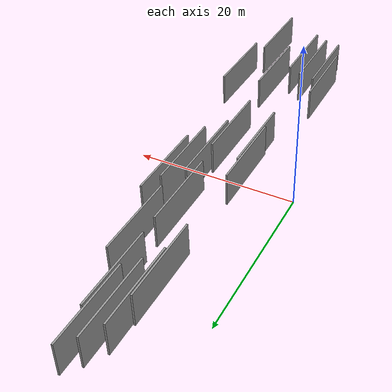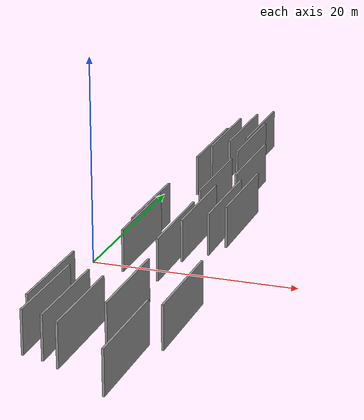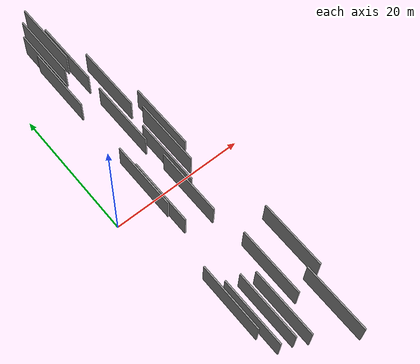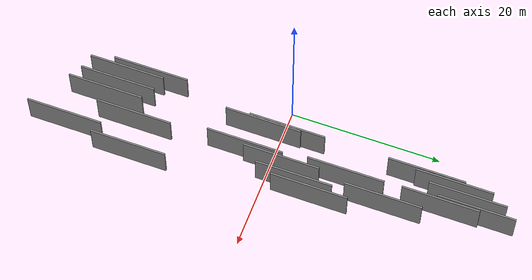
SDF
<sdf version="1.6">
 <world name="default">
  <scene>
   <sky><clouds><speed>12</speed></clouds></sky>
   <ambient>0.4 0.4 0.4 1</ambient>
   <background>0.7 0.7 0.7 1</background>
   <shadows>1</shadows>
  </scene>
  <gravity>0 0 -9.8066</gravity>
  <magnetic_field>6e-06 2.3e-05 -4.2e-05</magnetic_field>
  <physics default="0" name="default_physics" type="ode">
   <ode>
    <solver>
     <type>quick</type>
     <iters>10</iters>
     <sor>1.0</sor>
     <use_dynamic_moi_rescaling>0</use_dynamic_moi_rescaling>
    </solver>
    <constraints>
     <cfm>0</cfm>
     <erp>0.2</erp>
     <contact_max_correcting_vel>100</contact_max_correcting_vel>
     <contact_surface_layer>0.001</contact_surface_layer>
    </constraints>
   </ode>
   <max_step_size>0.004</max_step_size>
   <real_time_factor>1</real_time_factor>
   <real_time_update_rate>250</real_time_update_rate>
  </physics>
  <light name="sun" type="directional">
   <pose>0 0 10 0 0 0</pose>
   <diffuse>0.8 0.8 0.8 1</diffuse>
   <specular>0.2 0.2 0.2 1</specular>
   <attenuation>
    <range>1000</range>
    <constant>0.9</constant>
    <linear>0.01</linear>
    <quadratic>0.001</quadratic>
   </attenuation>
   <direction>-0.5 0.1 -0.9</direction>
  </light>
  <model name="grey_wall_1">
   <static>1</static>
   <pose>10.1915 -17.6369 2.5 0.000000 0.000000 1.570796</pose>
   <link name="link">
    <pose>0 0 2.00 0 0 0</pose>
    <collision name="collision"><geometry><box><size>10.00 0.2 4.00</size></box></geometry></collision>
    <visual name="visual">
     <cast_shadows>0</cast_shadows>
     <geometry><box><size>10.00 0.2 4.00</size></box></geometry>
     <material>
      <script>
       <uri>model://grey_wall/materials/scripts</uri>
       <uri>model://grey_wall/materials/textures</uri>
       <name>vrc/grey_wall</name>
      </script>
     </material>
    </visual>
   </link>
  </model>
  <model name="grey_wall_2">
   <static>1</static>
   <pose>13.1539 -25.8379 2.5 0.000000 0.000000 1.570796</pose>
   <link name="link">
    <pose>0 0 2.00 0 0 0</pose>
    <collision name="collision"><geometry><box><size>10.00 0.2 4.00</size></box></geometry></collision>
    <visual name="visual">
     <cast_shadows>0</cast_shadows>
     <geometry><box><size>10.00 0.2 4.00</size></box></geometry>
     <material>
      <script>
       <uri>model://grey_wall/materials/scripts</uri>
       <uri>model://grey_wall/materials/textures</uri>
       <name>vrc/grey_wall</name>
      </script>
     </material>
    </visual>
   </link>
  </model>
  <model name="grey_wall_3">
   <static>1</static>
   <pose>5.4535 19.5235 2.5 0.000000 0.000000 1.570796</pose>
   <link name="link">
    <pose>0 0 2.00 0 0 0</pose>
    <collision name="collision"><geometry><box><size>10.00 0.2 4.00</size></box></geometry></collision>
    <visual name="visual">
     <cast_shadows>0</cast_shadows>
     <geometry><box><size>10.00 0.2 4.00</size></box></geometry>
     <material>
      <script>
       <uri>model://grey_wall/materials/scripts</uri>
       <uri>model://grey_wall/materials/textures</uri>
       <name>vrc/grey_wall</name>
      </script>
     </material>
    </visual>
   </link>
  </model>
  <model name="grey_wall_4">
   <static>1</static>
   <pose>14.6187 -16.5782 2.5 0.000000 0.000000 1.570796</pose>
   <link name="link">
    <pose>0 0 2.00 0 0 0</pose>
    <collision name="collision"><geometry><box><size>10.00 0.2 4.00</size></box></geometry></collision>
    <visual name="visual">
     <cast_shadows>0</cast_shadows>
     <geometry><box><size>10.00 0.2 4.00</size></box></geometry>
     <material>
      <script>
       <uri>model://grey_wall/materials/scripts</uri>
       <uri>model://grey_wall/materials/textures</uri>
       <name>vrc/grey_wall</name>
      </script>
     </material>
    </visual>
   </link>
  </model>
  <model name="grey_wall_5">
   <static>1</static>
   <pose>9.8254 1.9844 2.5 0.000000 0.000000 1.570796</pose>
   <link name="link">
    <pose>0 0 2.00 0 0 0</pose>
    <collision name="collision"><geometry><box><size>10.00 0.2 4.00</size></box></geometry></collision>
    <visual name="visual">
     <cast_shadows>0</cast_shadows>
     <geometry><box><size>10.00 0.2 4.00</size></box></geometry>
     <material>
      <script>
       <uri>model://grey_wall/materials/scripts</uri>
       <uri>model://grey_wall/materials/textures</uri>
       <name>vrc/grey_wall</name>
      </script>
     </material>
    </visual>
   </link>
  </model>
  <model name="grey_wall_6">
   <static>1</static>
   <pose>5.7370 23.1945 2.5 0.000000 0.000000 1.570796</pose>
   <link name="link">
    <pose>0 0 2.00 0 0 0</pose>
    <collision name="collision"><geometry><box><size>10.00 0.2 4.00</size></box></geometry></collision>
    <visual name="visual">
     <cast_shadows>0</cast_shadows>
     <geometry><box><size>10.00 0.2 4.00</size></box></geometry>
     <material>
      <script>
       <uri>model://grey_wall/materials/scripts</uri>
       <uri>model://grey_wall/materials/textures</uri>
       <name>vrc/grey_wall</name>
      </script>
     </material>
    </visual>
   </link>
  </model>
  <model name="grey_wall_7">
   <static>1</static>
   <pose>6.9588 25.2587 2.5 0.000000 0.000000 1.570796</pose>
   <link name="link">
    <pose>0 0 2.00 0 0 0</pose>
    <collision name="collision"><geometry><box><size>10.00 0.2 4.00</size></box></geometry></collision>
    <visual name="visual">
     <cast_shadows>0</cast_shadows>
     <geometry><box><size>10.00 0.2 4.00</size></box></geometry>
     <material>
      <script>
       <uri>model://grey_wall/materials/scripts</uri>
       <uri>model://grey_wall/materials/textures</uri>
       <name>vrc/grey_wall</name>
      </script>
     </material>
    </visual>
   </link>
  </model>
  <model name="grey_wall_8">
   <static>1</static>
   <pose>12.5644 6.6030 2.5 0.000000 0.000000 1.570796</pose>
   <link name="link">
    <pose>0 0 2.00 0 0 0</pose>
    <collision name="collision"><geometry><box><size>10.00 0.2 4.00</size></box></geometry></collision>
    <visual name="visual">
     <cast_shadows>0</cast_shadows>
     <geometry><box><size>10.00 0.2 4.00</size></box></geometry>
     <material>
      <script>
       <uri>model://grey_wall/materials/scripts</uri>
       <uri>model://grey_wall/materials/textures</uri>
       <name>vrc/grey_wall</name>
      </script>
     </material>
    </visual>
   </link>
  </model>
  <model name="grey_wall_9">
   <static>1</static>
   <pose>10.6822 15.5654 2.5 0.000000 0.000000 1.570796</pose>
   <link name="link">
    <pose>0 0 2.00 0 0 0</pose>
    <collision name="collision"><geometry><box><size>10.00 0.2 4.00</size></box></geometry></collision>
    <visual name="visual">
     <cast_shadows>0</cast_shadows>
     <geometry><box><size>10.00 0.2 4.00</size></box></geometry>
     <material>
      <script>
       <uri>model://grey_wall/materials/scripts</uri>
       <uri>model://grey_wall/materials/textures</uri>
       <name>vrc/grey_wall</name>
      </script>
     </material>
    </visual>
   </link>
  </model>
  <model name="grey_wall_10">
   <static>1</static>
   <pose>6.2647 -21.4717 2.5 0.000000 0.000000 1.570796</pose>
   <link name="link">
    <pose>0 0 2.00 0 0 0</pose>
    <collision name="collision"><geometry><box><size>10.00 0.2 4.00</size></box></geometry></collision>
    <visual name="visual">
     <cast_shadows>0</cast_shadows>
     <geometry><box><size>10.00 0.2 4.00</size></box></geometry>
     <material>
      <script>
       <uri>model://grey_wall/materials/scripts</uri>
       <uri>model://grey_wall/materials/textures</uri>
       <name>vrc/grey_wall</name>
      </script>
     </material>
    </visual>
   </link>
  </model>
  <model name="grey_wall_11">
   <static>1</static>
   <pose>7.9480 -22.4213 2.5 0.000000 0.000000 1.570796</pose>
   <link name="link">
    <pose>0 0 2.00 0 0 0</pose>
    <collision name="collision"><geometry><box><size>10.00 0.2 4.00</size></box></geometry></collision>
    <visual name="visual">
     <cast_shadows>0</cast_shadows>
     <geometry><box><size>10.00 0.2 4.00</size></box></geometry>
     <material>
      <script>
       <uri>model://grey_wall/materials/scripts</uri>
       <uri>model://grey_wall/materials/textures</uri>
       <name>vrc/grey_wall</name>
      </script>
     </material>
    </visual>
   </link>
  </model>
  <model name="grey_wall_12">
   <static>1</static>
   <pose>8.3317 26.7676 2.5 0.000000 0.000000 1.570796</pose>
   <link name="link">
    <pose>0 0 2.00 0 0 0</pose>
    <collision name="collision"><geometry><box><size>10.00 0.2 4.00</size></box></geometry></collision>
    <visual name="visual">
     <cast_shadows>0</cast_shadows>
     <geometry><box><size>10.00 0.2 4.00</size></box></geometry>
     <material>
      <script>
       <uri>model://grey_wall/materials/scripts</uri>
       <uri>model://grey_wall/materials/textures</uri>
       <name>vrc/grey_wall</name>
      </script>
     </material>
    </visual>
   </link>
  </model>
  <model name="grey_wall_13">
   <static>1</static>
   <pose>11.5976 4.2517 2.5 0.000000 0.000000 1.570796</pose>
   <link name="link">
    <pose>0 0 2.00 0 0 0</pose>
    <collision name="collision"><geometry><box><size>10.00 0.2 4.00</size></box></geometry></collision>
    <visual name="visual">
     <cast_shadows>0</cast_shadows>
     <geometry><box><size>10.00 0.2 4.00</size></box></geometry>
     <material>
      <script>
       <uri>model://grey_wall/materials/scripts</uri>
       <uri>model://grey_wall/materials/textures</uri>
       <name>vrc/grey_wall</name>
      </script>
     </material>
    </visual>
   </link>
  </model>
  <model name="grey_wall_14">
   <static>1</static>
   <pose>9.2960 -3.0367 2.5 0.000000 0.000000 1.570796</pose>
   <link name="link">
    <pose>0 0 2.00 0 0 0</pose>
    <collision name="collision"><geometry><box><size>10.00 0.2 4.00</size></box></geometry></collision>
    <visual name="visual">
     <cast_shadows>0</cast_shadows>
     <geometry><box><size>10.00 0.2 4.00</size></box></geometry>
     <material>
      <script>
       <uri>model://grey_wall/materials/scripts</uri>
       <uri>model://grey_wall/materials/textures</uri>
       <name>vrc/grey_wall</name>
      </script>
     </material>
    </visual>
   </link>
  </model>
  <model name="grey_wall_15">
   <static>1</static>
   <pose>8.7042 22.3208 2.5 0.000000 0.000000 1.570796</pose>
   <link name="link">
    <pose>0 0 2.00 0 0 0</pose>
    <collision name="collision"><geometry><box><size>10.00 0.2 4.00</size></box></geometry></collision>
    <visual name="visual">
     <cast_shadows>0</cast_shadows>
     <geometry><box><size>10.00 0.2 4.00</size></box></geometry>
     <material>
      <script>
       <uri>model://grey_wall/materials/scripts</uri>
       <uri>model://grey_wall/materials/textures</uri>
       <name>vrc/grey_wall</name>
      </script>
     </material>
    </visual>
   </link>
  </model>
  <model name="grey_wall_16">
   <static>1</static>
   <pose>8.8288 10.0887 2.5 0.000000 0.000000 1.570796</pose>
   <link name="link">
    <pose>0 0 2.00 0 0 0</pose>
    <collision name="collision"><geometry><box><size>10.00 0.2 4.00</size></box></geometry></collision>
    <visual name="visual">
     <cast_shadows>0</cast_shadows>
     <geometry><box><size>10.00 0.2 4.00</size></box></geometry>
     <material>
      <script>
       <uri>model://grey_wall/materials/scripts</uri>
       <uri>model://grey_wall/materials/textures</uri>
       <name>vrc/grey_wall</name>
      </script>
     </material>
    </visual>
   </link>
  </model>
  <model name="grey_wall_17">
   <static>1</static>
   <pose>3.5034 -18.0280 2.5 0.000000 0.000000 1.570796</pose>
   <link name="link">
    <pose>0 0 2.00 0 0 0</pose>
    <collision name="collision"><geometry><box><size>10.00 0.2 4.00</size></box></geometry></collision>
    <visual name="visual">
     <cast_shadows>0</cast_shadows>
     <geometry><box><size>10.00 0.2 4.00</size></box></geometry>
     <material>
      <script>
       <uri>model://grey_wall/materials/scripts</uri>
       <uri>model://grey_wall/materials/textures</uri>
       <name>vrc/grey_wall</name>
      </script>
     </material>
    </visual>
   </link>
  </model>
  <model name="grey_wall_18">
   <static>1</static>
   <pose>4.3147 -20.9890 2.5 0.000000 0.000000 1.570796</pose>
   <link name="link">
    <pose>0 0 2.00 0 0 0</pose>
    <collision name="collision"><geometry><box><size>10.00 0.2 4.00</size></box></geometry></collision>
    <visual name="visual">
     <cast_shadows>0</cast_shadows>
     <geometry><box><size>10.00 0.2 4.00</size></box></geometry>
     <material>
      <script>
       <uri>model://grey_wall/materials/scripts</uri>
       <uri>model://grey_wall/materials/textures</uri>
       <name>vrc/grey_wall</name>
      </script>
     </material>
    </visual>
   </link>
  </model>
  <model name="grey_wall_19">
   <static>1</static>
   <pose>5.6394 -1.9353 2.5 0.000000 0.000000 1.570796</pose>
   <link name="link">
    <pose>0 0 2.00 0 0 0</pose>
    <collision name="collision"><geometry><box><size>10.00 0.2 4.00</size></box></geometry></collision>
    <visual name="visual">
     <cast_shadows>0</cast_shadows>
     <geometry><box><size>10.00 0.2 4.00</size></box></geometry>
     <material>
      <script>
       <uri>model://grey_wall/materials/scripts</uri>
       <uri>model://grey_wall/materials/textures</uri>
       <name>vrc/grey_wall</name>
      </script>
     </material>
    </visual>
   </link>
  </model>
  <model name="grey_wall_20">
   <static>1</static>
   <pose>5.4048 1.1790 2.5 0.000000 0.000000 1.570796</pose>
   <link name="link">
    <pose>0 0 2.00 0 0 0</pose>
    <collision name="collision"><geometry><box><size>10.00 0.2 4.00</size></box></geometry></collision>
    <visual name="visual">
     <cast_shadows>0</cast_shadows>
     <geometry><box><size>10.00 0.2 4.00</size></box></geometry>
     <material>
      <script>
       <uri>model://grey_wall/materials/scripts</uri>
       <uri>model://grey_wall/materials/textures</uri>
       <name>vrc/grey_wall</name>
      </script>
     </material>
    </visual>
   </link>
  </model>
 </world>
</sdf>
